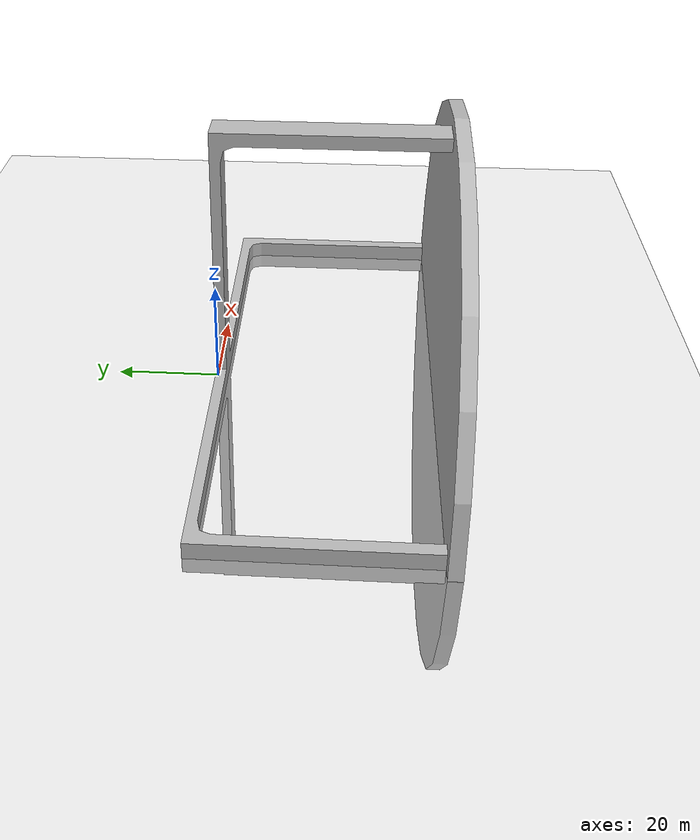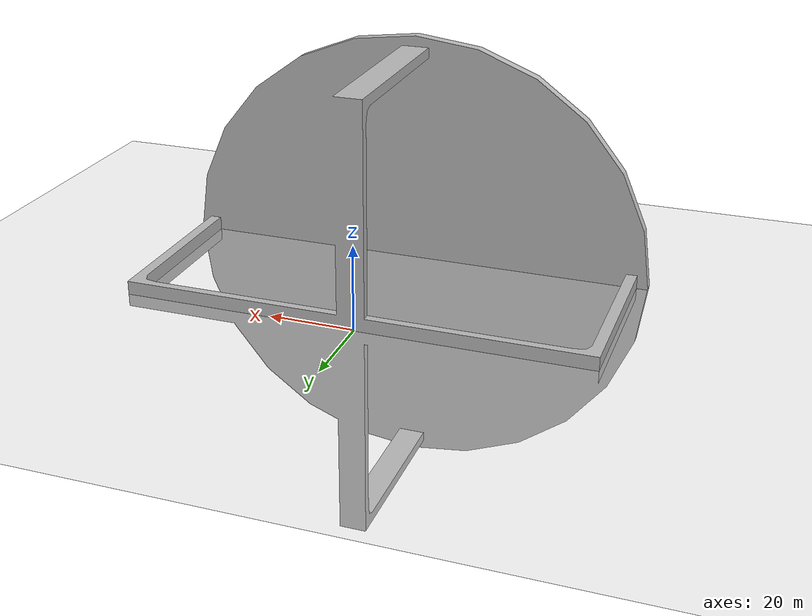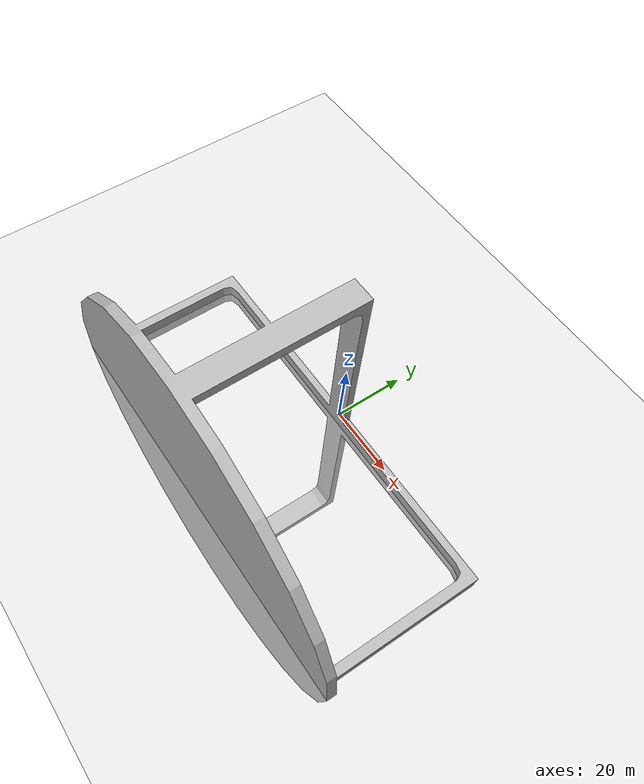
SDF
<?xml version="1.0"?>
<sdf version="1.4">
  <world name="default">
    <include>
      <uri>model://ground_plane</uri>
    </include>
    <include>
      <uri>model://coffeetable</uri>
      <name>table</name>
	    <pose>0.88 0 0  1.5708 0 0</pose>
    </include>
    <include>
      <uri>model://visp_tag</uri>
      <name>visp</name>
	    <pose>0.88 0 0.6  1.5708 0 -1.5708</pose>
    </include>

    <light name='user_point_light_0' type='point'>
      <pose frame=''>5.3 0 4.0 0 0 0</pose>
      <diffuse>1 1 1 1</diffuse>
      <specular>0.1 0.1 0.1 1</specular>
      <attenuation>
        <range>10</range>
        <constant>0.5</constant>
        <linear>0.01</linear>
        <quadratic>0.001</quadratic>
      </attenuation>
      <cast_shadows>0</cast_shadows>
      <direction>0 0 -1</direction>
    </light>

    <light name='user_point_light_3' type='point'>
      <pose frame=''>-5.3 0 4.0 0 -0 0</pose>
      <diffuse>1 1 1 1</diffuse>
      <specular>0.1 0.1 0.1 1</specular>
      <attenuation>
        <range>10</range>
        <constant>0.5</constant>
        <linear>0.01</linear>
        <quadratic>0.001</quadratic>
      </attenuation>
      <cast_shadows>0</cast_shadows>
      <direction>0 0 -1</direction>
    </light>

  </world>
</sdf>

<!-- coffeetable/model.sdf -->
<sdf version="1.4">
  <model name="coffeetable">
    <static>true</static>
    <link name="body">
      <inertial>
        <mass>20</mass>
        <inertia> <!-- inertias are tricky to compute -->
          <!-- http://gazebosim.org/tutorials?tut=inertia&cat=build_robot -->
          <ixx>1</ixx>       <!-- for a box: ixx = 0.083 * mass * (y*y + z*z) -->
          <ixy>000000</ixy>         <!-- for a box: ixy = 0 -->
          <ixz>0.000000</ixz>         <!-- for a box: ixz = 0 -->
          <iyy>1</iyy>       <!-- for a box: iyy = 0.083 * mass * (x*x + z*z) -->
          <iyz>0.000000</iyz>         <!-- for a box: iyz = 0 -->
          <izz>1</izz>       <!-- for a box: izz = 0.083 * mass * (x*x + y*y) -->
        </inertia>
      </inertial>

      <collision name="surface">
	<pose> 0 0.55 0 1.570801 0 0</pose>
        <geometry>
	  <box>
	    <size>0.9 1.6 0.04</size>
	  </box>
        </geometry>
      </collision>

      <visual name="visual">
        <geometry>
          <mesh>
	     <uri>model://coffeetable/meshes/coffeetable.obj</uri>
	     <scale>1.3 1.24 1.0</scale>
          </mesh>
        </geometry>
      </visual>
    </link>
  </model>
</sdf>

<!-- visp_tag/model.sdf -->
<sdf version="1.4">
<model name="floor_walls_1">
  <static>false</static>
    <link name="link">
      <collision name="collision">
        <geometry>
          <box>
            <size>0.07 0.07 0.07</size>
          </box>
        </geometry>
        <surface>
          <friction>
            <ode>
              <mu>100</mu>
              <mu2>50</mu2>
            </ode>
          </friction>
        </surface>
      </collision>
      <visual name="visual">
        <cast_shadows>false</cast_shadows>
        <geometry>
          <box>
            <size>0.07 0.07 0.07</size>
          </box>
        </geometry>
        <material>
          <script>
            <uri>model://visp_tag/visp.material</uri>
            <uri>model://visp_tag/visp_tag.png</uri>
            <name>visp_tag/Image</name>
          </script>
        </material>
      </visual>
    </link>
  </model>
</sdf>
